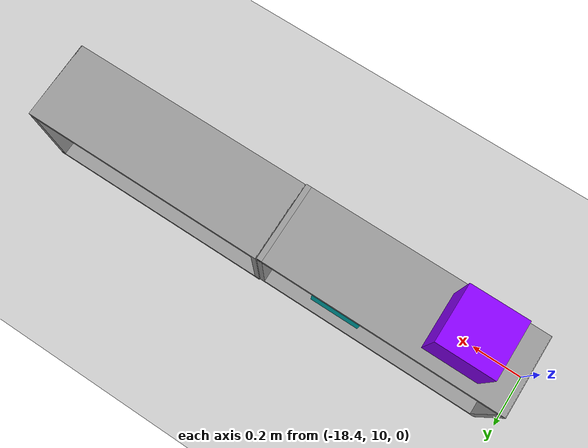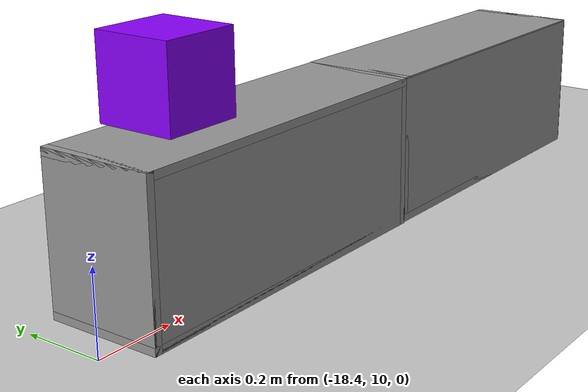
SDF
<sdf version="1.7">
 <world name="hospital_world">
  <model name="ground_plane">
   <static>1</static>
   <link name="link">
    <collision name="collision">
     <geometry><plane><normal>0 0 1</normal><size>100 100</size></plane></geometry>
     <surface>
      <contact><collide_bitmask>65535</collide_bitmask></contact>
      <friction><ode><mu>100</mu><mu2>50</mu2></ode></friction>
     </surface>
    </collision>
    <visual name="visual">
     <cast_shadows>0</cast_shadows>
     <geometry><plane><normal>0 0 1</normal><size>100 100</size></plane></geometry>
     <material>
      <script><uri>file://media/materials/scripts/gazebo.material</uri><name>Gazebo/Grey</name></script>
     </material>
    </visual>
   </link>
  </model>
  <model name="Wall_Cabinet_36x15W">
   <link name="Wall_0">
    <pose>0 0 0.01 0 -0 0</pose>
    <inertial>
     <mass>1.9796</mass>
     <inertia><ixx>0.0145</ixx><iyy>0.1511</iyy><izz>0.1367</izz><ixy>0</ixy><ixz>0</ixz><iyz>0</iyz></inertia>
    </inertial>
    <collision name="Wall_0_Collision"><geometry><box><size>0.91 0.296 0.02</size></box></geometry></collision>
    <visual name="Wall_0_Visual">
     <geometry><box><size>0.91 0.296 0.02</size></box></geometry>
     <material>
      <script><uri>file://media/materials/scripts/gazebo.material</uri><name>Gazebo/Grey</name></script>
      <ambient>1 1 1 1</ambient>
     </material>
    </visual>
   </link>
   <joint name="0_2" type="fixed">
    <pose>-0.455 0 0 0 -0 0</pose>
    <parent>Wall_2</parent>
    <child>Wall_0</child>
    <axis><xyz>0 0 1</xyz><limit><lower>-1e+16</lower><upper>1e+16</upper></limit></axis>
   </joint>
   <joint name="0_4" type="fixed">
    <pose>0.455 0 0 0 -0 0</pose>
    <parent>Wall_4</parent>
    <child>Wall_0</child>
    <axis><xyz>0 0 1</xyz><limit><lower>-1e+16</lower><upper>1e+16</upper></limit></axis>
   </joint>
   <joint name="0_8" type="fixed">
    <pose>0 -0.148 0 0 -0 0</pose>
    <parent>Wall_8</parent>
    <child>Wall_0</child>
    <axis><xyz>0 0 1</xyz><limit><lower>-1e+16</lower><upper>1e+16</upper></limit></axis>
   </joint>
   <link name="Wall_2">
    <pose>-0.445 0 0.192 0 -0 0</pose>
    <inertial>
     <mass>0.8353</mass>
     <inertia><ixx>0.0061</ixx><iyy>0.0164</iyy><izz>0.0103</izz><ixy>0</ixy><ixz>0</ixz><iyz>0</iyz></inertia>
    </inertial>
    <collision name="Wall_2_Collision"><geometry><box><size>0.02 0.296 0.384</size></box></geometry></collision>
    <visual name="Wall_2_Visual">
     <geometry><box><size>0.02 0.296 0.384</size></box></geometry>
     <material>
      <script><uri>file://media/materials/scripts/gazebo.material</uri><name>Gazebo/Grey</name></script>
      <ambient>1 1 1 1</ambient>
     </material>
    </visual>
   </link>
   <link name="Wall_4">
    <pose>0.445 0 0.192 0 -0 0</pose>
    <inertial>
     <mass>0.8353</mass>
     <inertia><ixx>0.0061</ixx><iyy>0.0164</iyy><izz>0.0103</izz><ixy>0</ixy><ixz>0</ixz><iyz>0</iyz></inertia>
    </inertial>
    <collision name="Wall_4_Collision"><geometry><box><size>0.02 0.296 0.384</size></box></geometry></collision>
    <visual name="Wall_4_Visual">
     <geometry><box><size>0.02 0.296 0.384</size></box></geometry>
     <material>
      <script><uri>file://media/materials/scripts/gazebo.material</uri><name>Gazebo/Grey</name></script>
      <ambient>1 1 1 1</ambient>
     </material>
    </visual>
   </link>
   <link name="Wall_6">
    <pose>0 0 0.374 0 -0 0</pose>
    <inertial>
     <mass>1.9796</mass>
     <inertia><ixx>0.0145</ixx><iyy>0.1511</iyy><izz>0.1367</izz><ixy>0</ixy><ixz>0</ixz><iyz>0</iyz></inertia>
    </inertial>
    <collision name="Wall_6_Collision"><geometry><box><size>0.91 0.296 0.02</size></box></geometry></collision>
    <visual name="Wall_6_Visual">
     <geometry><box><size>0.91 0.296 0.02</size></box></geometry>
     <material>
      <script><uri>file://media/materials/scripts/gazebo.material</uri><name>Gazebo/Grey</name></script>
      <ambient>1 1 1 1</ambient>
     </material>
    </visual>
   </link>
   <joint name="6_2" type="fixed">
    <pose>-0.455 0 0 0 -0 0</pose>
    <parent>Wall_2</parent>
    <child>Wall_6</child>
    <axis><xyz>0 0 1</xyz><limit><lower>-1e+16</lower><upper>1e+16</upper></limit></axis>
   </joint>
   <joint name="6_4" type="fixed">
    <pose>0.455 0 0 0 -0 0</pose>
    <parent>Wall_4</parent>
    <child>Wall_6</child>
    <axis><xyz>0 0 1</xyz><limit><lower>-1e+16</lower><upper>1e+16</upper></limit></axis>
   </joint>
   <joint name="6_8" type="fixed">
    <pose>0 -0.148 0 0 -0 0</pose>
    <parent>Wall_8</parent>
    <child>Wall_6</child>
    <axis><xyz>0 0 1</xyz><limit><lower>-1e+16</lower><upper>1e+16</upper></limit></axis>
   </joint>
   <link name="Wall_8">
    <pose>0 -0.138 0.19 0 -0 0</pose>
    <inertial>
     <mass>2.5302</mass>
     <inertia><ixx>0.0305</ixx><iyy>0.1732</iyy><izz>0.2035</izz><ixy>0</ixy><ixz>0</ixz><iyz>0</iyz></inertia>
    </inertial>
    <collision name="Wall_8_Collision"><geometry><box><size>0.906 0.02 0.38</size></box></geometry></collision>
    <visual name="Wall_8_Visual">
     <geometry><box><size>0.906 0.02 0.38</size></box></geometry>
     <material>
      <script><uri>file://media/materials/scripts/gazebo.material</uri><name>Gazebo/Grey</name></script>
      <ambient>1 1 1 1</ambient>
     </material>
    </visual>
   </link>
   <joint name="8_2" type="fixed">
    <pose>-0.453 0 0 0 -0 0</pose>
    <parent>Wall_2</parent>
    <child>Wall_8</child>
    <axis><xyz>0 1 0</xyz><limit><lower>-1e+16</lower><upper>1e+16</upper></limit></axis>
   </joint>
   <joint name="8_4" type="fixed">
    <pose>0.453 0 0 0 -0 0</pose>
    <parent>Wall_4</parent>
    <child>Wall_8</child>
    <axis><xyz>0 1 0</xyz><limit><lower>-1e+16</lower><upper>1e+16</upper></limit></axis>
   </joint>
   <static>1</static>
   <pose>-17.8708 10.066 0 0 -0 0</pose>
  </model>
  <model name="Wall_Cabinet_36x15W_clone">
   <link name="Wall_0">
    <pose>0 0 0.01 0 -0 0</pose>
    <inertial>
     <mass>1.9796</mass>
     <inertia><ixx>0.0145</ixx><iyy>0.1511</iyy><izz>0.1367</izz><ixy>0</ixy><ixz>0</ixz><iyz>0</iyz></inertia>
    </inertial>
    <collision name="Wall_0_Collision"><geometry><box><size>0.91 0.296 0.02</size></box></geometry></collision>
    <visual name="Wall_0_Visual">
     <geometry><box><size>0.91 0.296 0.02</size></box></geometry>
     <material>
      <script><uri>file://media/materials/scripts/gazebo.material</uri><name>Gazebo/Grey</name></script>
      <ambient>1 1 1 1</ambient>
     </material>
    </visual>
   </link>
   <joint name="0_2" type="fixed">
    <pose>-0.455 0 0 0 -0 0</pose>
    <parent>Wall_2</parent>
    <child>Wall_0</child>
    <axis><xyz>0 0 1</xyz><limit><lower>-1e+16</lower><upper>1e+16</upper></limit></axis>
   </joint>
   <joint name="0_4" type="fixed">
    <pose>0.455 0 0 0 -0 0</pose>
    <parent>Wall_4</parent>
    <child>Wall_0</child>
    <axis><xyz>0 0 1</xyz><limit><lower>-1e+16</lower><upper>1e+16</upper></limit></axis>
   </joint>
   <joint name="0_8" type="fixed">
    <pose>0 -0.148 0 0 -0 0</pose>
    <parent>Wall_8</parent>
    <child>Wall_0</child>
    <axis><xyz>0 0 1</xyz><limit><lower>-1e+16</lower><upper>1e+16</upper></limit></axis>
   </joint>
   <link name="Wall_2">
    <pose>-0.445 0 0.192 0 -0 0</pose>
    <inertial>
     <mass>0.8353</mass>
     <inertia><ixx>0.0061</ixx><iyy>0.0164</iyy><izz>0.0103</izz><ixy>0</ixy><ixz>0</ixz><iyz>0</iyz></inertia>
    </inertial>
    <collision name="Wall_2_Collision"><geometry><box><size>0.02 0.296 0.384</size></box></geometry></collision>
    <visual name="Wall_2_Visual">
     <geometry><box><size>0.02 0.296 0.384</size></box></geometry>
     <material>
      <script><uri>file://media/materials/scripts/gazebo.material</uri><name>Gazebo/Grey</name></script>
      <ambient>1 1 1 1</ambient>
     </material>
    </visual>
   </link>
   <link name="Wall_4">
    <pose>0.445 0 0.192 0 -0 0</pose>
    <inertial>
     <mass>0.8353</mass>
     <inertia><ixx>0.0061</ixx><iyy>0.0164</iyy><izz>0.0103</izz><ixy>0</ixy><ixz>0</ixz><iyz>0</iyz></inertia>
    </inertial>
    <collision name="Wall_4_Collision"><geometry><box><size>0.02 0.296 0.384</size></box></geometry></collision>
    <visual name="Wall_4_Visual">
     <geometry><box><size>0.02 0.296 0.384</size></box></geometry>
     <material>
      <script><uri>file://media/materials/scripts/gazebo.material</uri><name>Gazebo/Grey</name></script>
      <ambient>1 1 1 1</ambient>
     </material>
    </visual>
   </link>
   <link name="Wall_6">
    <pose>0 0 0.374 0 -0 0</pose>
    <inertial>
     <mass>1.9796</mass>
     <inertia><ixx>0.0145</ixx><iyy>0.1511</iyy><izz>0.1367</izz><ixy>0</ixy><ixz>0</ixz><iyz>0</iyz></inertia>
    </inertial>
    <collision name="Wall_6_Collision"><geometry><box><size>0.91 0.296 0.02</size></box></geometry></collision>
    <visual name="Wall_6_Visual">
     <geometry><box><size>0.91 0.296 0.02</size></box></geometry>
     <material>
      <script><uri>file://media/materials/scripts/gazebo.material</uri><name>Gazebo/Grey</name></script>
      <ambient>1 1 1 1</ambient>
     </material>
    </visual>
   </link>
   <joint name="6_2" type="fixed">
    <pose>-0.455 0 0 0 -0 0</pose>
    <parent>Wall_2</parent>
    <child>Wall_6</child>
    <axis><xyz>0 0 1</xyz><limit><lower>-1e+16</lower><upper>1e+16</upper></limit></axis>
   </joint>
   <joint name="6_4" type="fixed">
    <pose>0.455 0 0 0 -0 0</pose>
    <parent>Wall_4</parent>
    <child>Wall_6</child>
    <axis><xyz>0 0 1</xyz><limit><lower>-1e+16</lower><upper>1e+16</upper></limit></axis>
   </joint>
   <joint name="6_8" type="fixed">
    <pose>0 -0.148 0 0 -0 0</pose>
    <parent>Wall_8</parent>
    <child>Wall_6</child>
    <axis><xyz>0 0 1</xyz><limit><lower>-1e+16</lower><upper>1e+16</upper></limit></axis>
   </joint>
   <link name="Wall_8">
    <pose>0 -0.138 0.19 0 -0 0</pose>
    <inertial>
     <mass>2.5302</mass>
     <inertia><ixx>0.0305</ixx><iyy>0.1732</iyy><izz>0.2035</izz><ixy>0</ixy><ixz>0</ixz><iyz>0</iyz></inertia>
    </inertial>
    <collision name="Wall_8_Collision"><geometry><box><size>0.906 0.02 0.38</size></box></geometry></collision>
    <visual name="Wall_8_Visual">
     <geometry><box><size>0.906 0.02 0.38</size></box></geometry>
     <material>
      <script><uri>file://media/materials/scripts/gazebo.material</uri><name>Gazebo/Grey</name></script>
      <ambient>1 1 1 1</ambient>
     </material>
    </visual>
   </link>
   <joint name="8_2" type="fixed">
    <pose>-0.453 0 0 0 -0 0</pose>
    <parent>Wall_2</parent>
    <child>Wall_8</child>
    <axis><xyz>0 1 0</xyz><limit><lower>-1e+16</lower><upper>1e+16</upper></limit></axis>
   </joint>
   <joint name="8_4" type="fixed">
    <pose>0.453 0 0 0 -0 0</pose>
    <parent>Wall_4</parent>
    <child>Wall_8</child>
    <axis><xyz>0 1 0</xyz><limit><lower>-1e+16</lower><upper>1e+16</upper></limit></axis>
   </joint>
   <static>1</static>
   <pose>-16.9601 10.0692 -0 0 -0 0</pose>
  </model>
  <model name="cube_bg">
   <link name="link_2">
    <pose>0 0 0.1 0 -0 0</pose>
    <inertial>
     <mass>1</mass>
     <inertia>
      <ixx>0.166667</ixx>
      <ixy>0</ixy>
      <ixz>0</ixz>
      <iyy>0.166667</iyy>
      <iyz>0</iyz>
      <izz>0.166667</izz>
     </inertia>
    </inertial>
    <visual name="visual">
     <geometry><box><size>0.2 0.2 0.2</size></box></geometry>
     <material>
      <lighting>1</lighting>
      <script><uri>file://media/materials/scripts/gazebo.material</uri><name>Gazebo/Grey</name></script>
      <ambient>0 0.71 0.722 1</ambient>
      <diffuse>0 0.71 0.722 1</diffuse>
      <specular>0 0 0 1</specular>
      <emissive>0 0 0 1</emissive>
      <shader type="vertex"><normal_map>__default__</normal_map></shader>
     </material>
    </visual>
    <collision name="collision">
     <geometry><box><size>0.2 0.2 0.2</size></box></geometry>
     <surface>
      <friction>
       <ode><mu>1</mu><mu2>1</mu2><fdir1>0 0 0</fdir1><slip1>0</slip1><slip2>0</slip2></ode>
       <torsional>
        <coefficient>1</coefficient>
        <patch_radius>0</patch_radius>
        <surface_radius>0</surface_radius>
        <use_patch_radius>1</use_patch_radius>
        <ode><slip>0</slip></ode>
       </torsional>
      </friction>
      <bounce><restitution_coefficient>0</restitution_coefficient><threshold>1e+06</threshold></bounce>
      <contact>
       <collide_without_contact>0</collide_without_contact>
       <collide_without_contact_bitmask>1</collide_without_contact_bitmask>
       <collide_bitmask>1</collide_bitmask>
       <ode>
        <soft_cfm>0</soft_cfm>
        <soft_erp>0.2</soft_erp>
        <kp>1e+13</kp>
        <kd>1</kd>
        <max_vel>0.01</max_vel>
        <min_depth>0</min_depth>
       </ode>
       <bullet>
        <split_impulse>1</split_impulse>
        <split_impulse_penetration_threshold>-0.01</split_impulse_penetration_threshold>
        <soft_cfm>0</soft_cfm>
        <soft_erp>0.2</soft_erp>
        <kp>1e+13</kp>
        <kd>1</kd>
       </bullet>
      </contact>
     </surface>
    </collision>
   </link>
   <static>1</static>
   <pose>-17.7135 10.0776 0 0 -0 0</pose>
  </model>
  <model name="cube_vb">
   <link name="link_2">
    <pose>0 0 0.1 0 -0 0</pose>
    <inertial>
     <mass>1</mass>
     <inertia>
      <ixx>0.166667</ixx>
      <ixy>0</ixy>
      <ixz>0</ixz>
      <iyy>0.166667</iyy>
      <iyz>0</iyz>
      <izz>0.166667</izz>
     </inertia>
    </inertial>
    <visual name="visual">
     <geometry><box><size>0.2 0.2 0.2</size></box></geometry>
     <material>
      <lighting>1</lighting>
      <script><uri>file://media/materials/scripts/gazebo.material</uri><name>Gazebo/Grey</name></script>
      <ambient>0.549 0 1 1</ambient>
      <diffuse>0.549 0 1 1</diffuse>
      <specular>0 0 0 1</specular>
      <emissive>0 0 0 1</emissive>
      <shader type="vertex"><normal_map>__default__</normal_map></shader>
     </material>
    </visual>
    <collision name="collision">
     <geometry><box><size>0.2 0.2 0.2</size></box></geometry>
     <surface>
      <friction>
       <ode><mu>1</mu><mu2>1</mu2><fdir1>0 0 0</fdir1><slip1>0</slip1><slip2>0</slip2></ode>
       <torsional>
        <coefficient>1</coefficient>
        <patch_radius>0</patch_radius>
        <surface_radius>0</surface_radius>
        <use_patch_radius>1</use_patch_radius>
        <ode><slip>0</slip></ode>
       </torsional>
      </friction>
      <bounce><restitution_coefficient>0</restitution_coefficient><threshold>1e+06</threshold></bounce>
      <contact>
       <collide_without_contact>0</collide_without_contact>
       <collide_without_contact_bitmask>1</collide_without_contact_bitmask>
       <collide_bitmask>1</collide_bitmask>
       <ode>
        <soft_cfm>0</soft_cfm>
        <soft_erp>0.2</soft_erp>
        <kp>1e+13</kp>
        <kd>1</kd>
        <max_vel>0.01</max_vel>
        <min_depth>0</min_depth>
       </ode>
       <bullet>
        <split_impulse>1</split_impulse>
        <split_impulse_penetration_threshold>-0.01</split_impulse_penetration_threshold>
        <soft_cfm>0</soft_cfm>
        <soft_erp>0.2</soft_erp>
        <kp>1e+13</kp>
        <kd>1</kd>
       </bullet>
      </contact>
     </surface>
    </collision>
   </link>
   <static>1</static>
   <pose>-18.098 10.0742 0.408164 0 -0 0</pose>
  </model>
 </world>
</sdf>
